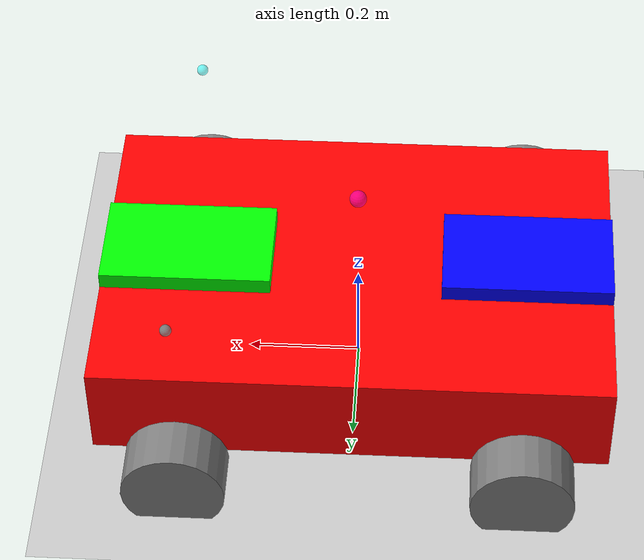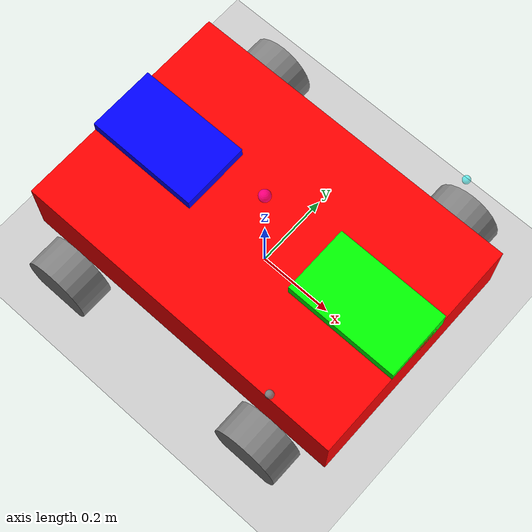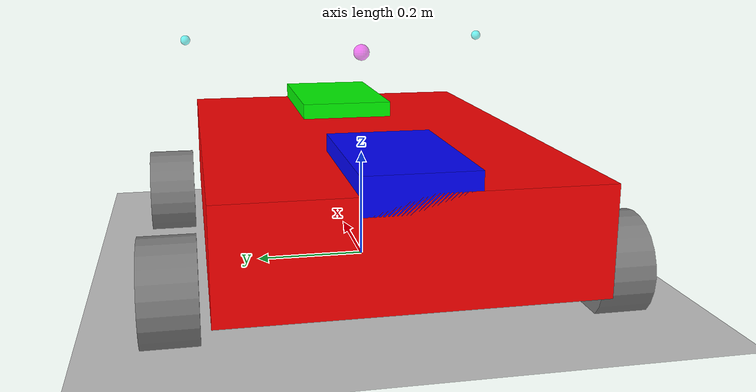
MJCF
<mujoco model="car">
  <compiler inertiafromgeom="true"/>
  <option timestep="0.002" gravity="0 0 -9.81"/>

  <asset>
    <texture name="grid" type="2d" builtin="checker"
             rgb1="0.2 0.3 0.4" rgb2="0.8 0.8 0.8"
             width="512" height="512"/>
    <material name="grid_mat" texture="grid" texrepeat="5 5"
              specular="0.3" shininess="0.3"/>
    <texture name="wheel_pattern" type="2d" builtin="checker"
             rgb1="1 1 1" rgb2="0 0 0"
             width="64" height="64"/>
    <material name="wheel_mat" texture="wheel_pattern" texrepeat="8 1"
              specular="0.5" shininess="0.5"/>
  </asset>

  <worldbody>
    <geom name="floor" type="plane" size="150 150 0.3"
          rgba="0.8 0.8 0.8 1" material="grid_mat"
          friction="0.8 0.005 0.0001"/>

    <body name="chassis" pos="0 0 0.15">
      <joint name="x"   type="slide" axis="1 0 0" damping="0.1"/>
      <joint name="y"   type="slide" axis="0 1 0" damping="0.1"/>
      <joint name="rot" type="hinge" axis="0 0 1" damping="0.1"/>

      <geom name="chassis" type="box" size="0.45 0.3 0.09"
            rgba="1 0 0 1" mass="100.0"/>
      <geom name="front" type="box" size="0.15 0.09 0.03"
            pos="0.3 0 0.09" rgba="0 1 0 1"/>
      <geom name="rear"  type="box" size="0.15 0.09 0.03"
            pos="-0.3 0 0.09" rgba="0 0 1 1"/>

      <!-- ✅ 운전석 센서 부착 위치 (site) -->
      <site name="driver_seat" pos="0 0 0.24" size="0.015"
            rgba="1 0 1 0.5"/>

      <!-- LiDAR origin sites -->
      <site name="lidar_left" pos="0.3 0.32 0.24" size="0.01"
            rgba="0 1 1 0.5"/>
      <site name="lidar_right" pos="0.3 -0.32 0.24" size="0.01"
            rgba="0 1 1 0.5"/>

      <!-- 앞왼쪽 바퀴 -->
      <body name="fl_susp" pos="0.3 0.36 0.0">
        <inertial pos="0 0 0" mass="1" diaginertia="0.001 0.001 0.001"/>
        <joint name="fl_suspension" type="slide" axis="0 0 1" damping="2"/>

        <body name="front_left_wheel" pos="0 0 -0.09">
          <joint name="fl_steer" type="hinge" axis="0 0 1" range="-0.6 0.6" damping="0.05"/>
          <joint name="fl_wheel" type="hinge" axis="0 1 0" damping="0.01"/>
          <geom name="fl_geom" type="cylinder" size="0.09 0.045"
                euler="90 0 0" material="wheel_mat"
                mass="0.1" friction="0.8 0.005 0.0001"/>
        </body>
      </body>

      <!-- 앞오른쪽 바퀴 -->
      <body name="fr_susp" pos="0.3 -0.36 0.0">
        <inertial pos="0 0 0" mass="1" diaginertia="0.001 0.001 0.001"/>
        <joint name="fr_suspension" type="slide" axis="0 0 1" damping="2"/>

        <body name="front_right_wheel" pos="0 0 -0.09">
          <joint name="fr_steer" type="hinge" axis="0 0 1" range="-0.6 0.6" damping="0.05"/>
          <joint name="fr_wheel" type="hinge" axis="0 1 0" damping="0.01"/>
          <geom name="fr_geom" type="cylinder" size="0.09 0.045"
                euler="90 0 0" material="wheel_mat"
                mass="0.1" friction="0.8 0.005 0.0001"/>
        </body>
      </body>

      <!-- 뒤왼쪽 바퀴 -->
      <body name="rl_susp" pos="-0.3 0.36 0.0">
        <inertial pos="0 0 0" mass="1" diaginertia="0.001 0.001 0.001"/>
        <joint name="rl_suspension" type="slide" axis="0 0 1" damping="2"/>

        <body name="rear_left_wheel" pos="0 0 -0.09">
          <joint name="rl_wheel" type="hinge" axis="0 1 0" damping="0.01"/>
          <geom name="rl_geom" type="cylinder" size="0.09 0.045"
                euler="90 0 0" material="wheel_mat"
                mass="0.1" friction="0.8 0.005 0.0001"/>
        </body>
      </body>

      <!-- 뒤오른쪽 바퀴 -->
      <body name="rr_susp" pos="-0.3 -0.36 0.0">
        <inertial pos="0 0 0" mass="1" diaginertia="0.001 0.001 0.001"/>
        <joint name="rr_suspension" type="slide" axis="0 0 1" damping="2"/>

        <body name="rear_right_wheel" pos="0 0 -0.09">
          <joint name="rr_wheel" type="hinge" axis="0 1 0" damping="0.01"/>
          <geom name="rr_geom" type="cylinder" size="0.09 0.045"
                euler="90 0 0" material="wheel_mat"
                mass="0.1" friction="0.8 0.005 0.0001"/>
        </body>
      </body>

    </body>
  </worldbody>

  <sensor>
    <!-- ✅ 운전석 기준 vertical 가속도 -->
      <accelerometer name="accel_z" site="driver_seat"/>
      <!-- ✅ pitch 확인용 자이로 (z축은 yaw, pitch는 x축 기준) -->
      <gyro name="gyro_pitch" site="driver_seat"/>

      <!-- LiDAR site positions for simulation -->
      <!-- MuJoCo frame sensors use objtype/objname to specify targets -->
      <framepos name="lidar_left_pos" objtype="site" objname="lidar_left"/>
      <framepos name="lidar_right_pos" objtype="site" objname="lidar_right"/>
    </sensor>

  <actuator>
    <motor name="fl_motor" joint="fl_wheel" ctrlrange="-10 10" gear="0.1"/>
    <motor name="fr_motor" joint="fr_wheel" ctrlrange="-10 10" gear="0.1"/>
    <motor name="rl_motor" joint="rl_wheel" ctrlrange="-10 10" gear="0.1"/>
    <motor name="rr_motor" joint="rr_wheel" ctrlrange="-10 10" gear="0.1"/>

    <motor name="fl_steer" joint="fl_steer" ctrlrange="-0.6 0.6" gear="1"/>
    <motor name="fr_steer" joint="fr_steer" ctrlrange="-0.6 0.6" gear="1"/>

    <general name="fl_spring" joint="fl_suspension" gainprm="0 0 0" biasprm="0 1000 10"/>
    <general name="fr_spring" joint="fr_suspension" gainprm="0 0 0" biasprm="0 1000 10"/>
    <general name="rl_spring" joint="rl_suspension" gainprm="0 0 0" biasprm="0 1000 10"/>
    <general name="rr_spring" joint="rr_suspension" gainprm="0 0 0" biasprm="0 1000 10"/>
  </actuator>
</mujoco>
